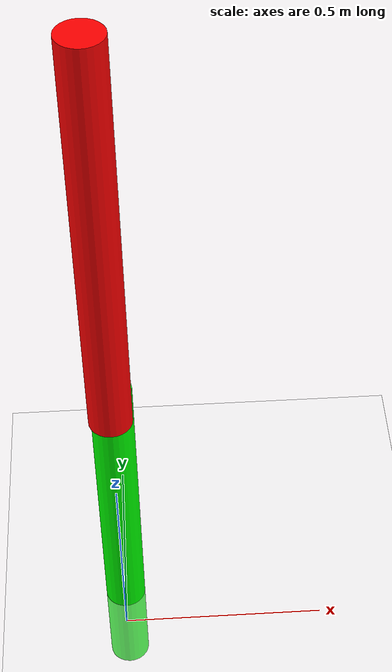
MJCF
<mujoco>
	<option gravity="0 0 -9.81" integrator="RK4">
		<flag energy="enable" contact="disable"/>
	</option>

	<worldbody>
		<light diffuse=".5 .5 .5" pos="0 0 0" dir="0 0 -1"/>
		<geom type="plane" size="1 1 .1" rgba="1 1 1 1"/>
		<body pos="0 0 1.25" euler="0 0 0">
			<joint name="pin1" type="hinge" axis="0 1 0" pos="0 0 .5"/>
			<geom type="cylinder" size=".05 .5" rgba="1 0 0 1" mass="1"/>

			<!--Moved a bit by y-axis to prevent collision-->
			<body pos="0 0.1 -1" euler="0 0 0">
				<joint name="pin2" type="hinge" axis="0 1 0" pos="0 0 0.5"/>
				<geom type="cylinder" size="0.05 0.5" rgba="0 1 0 1" mass="1"/>
 			</body>

		</body>
	</worldbody>
	<actuator>
		<!--Motor gets to know joint from the joint name -->
		<motor joint="pin1" name="torque1" gear="1" ctrllimited="true" ctrlrange="-100 100"/>
		<position name="pservo1" joint="pin1" kp="1000"/>
		<velocity name="vservo1" joint="pin1" kv="100"/>

		<motor joint="pin2" name="torque2" gear="1" ctrllimited="true" ctrlrange="-100 100"/>
		<position name="pservo2" joint="pin2" kp="1000"/>
		<velocity name="vservo2" joint="pin2" kv="100"/>
	</actuator>
</mujoco>
